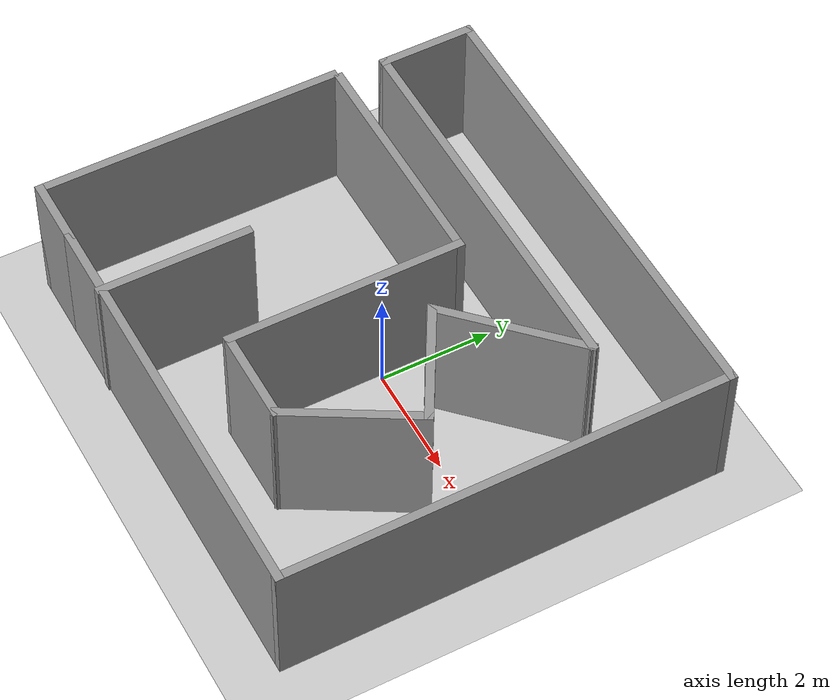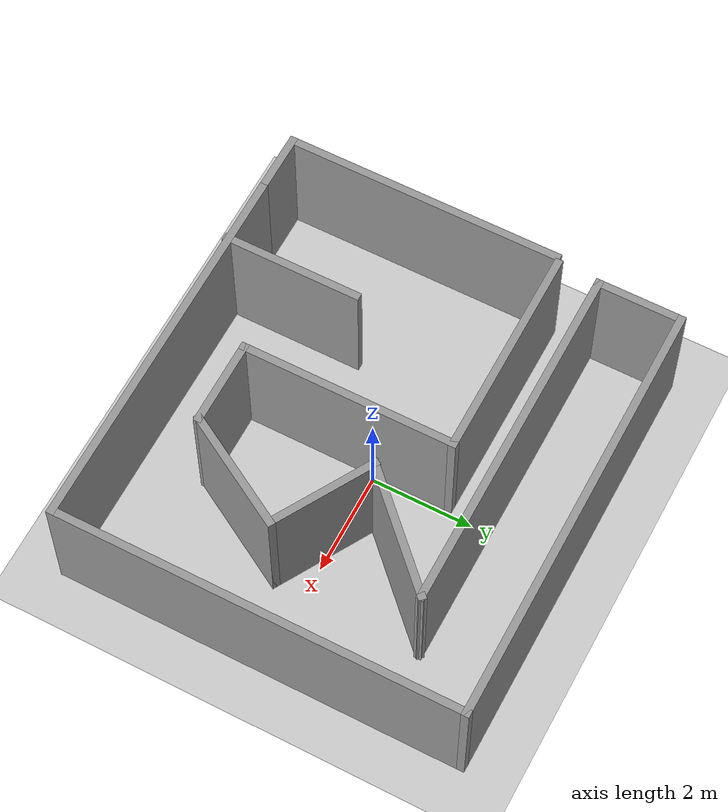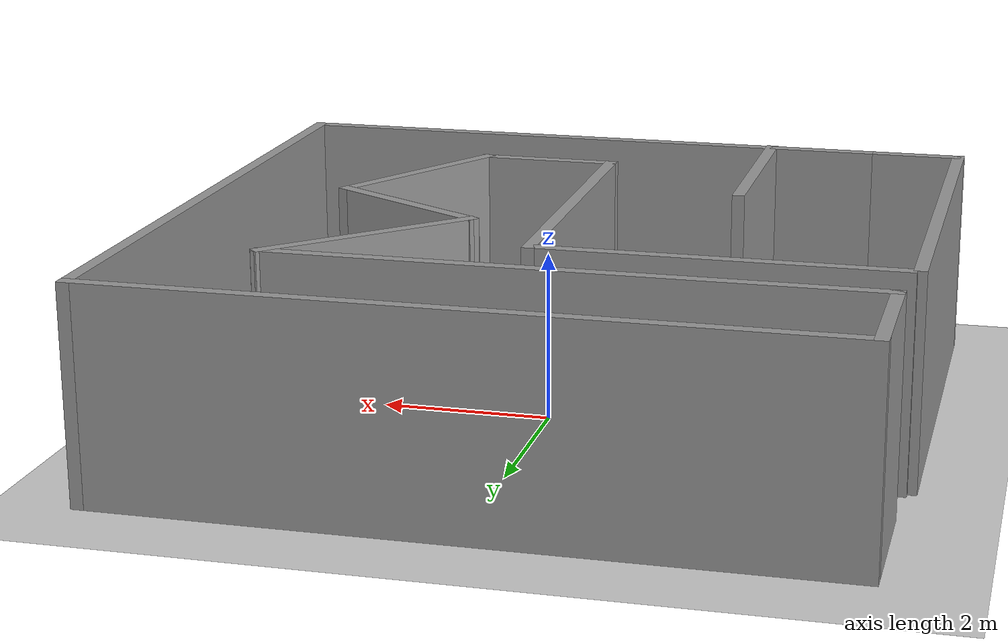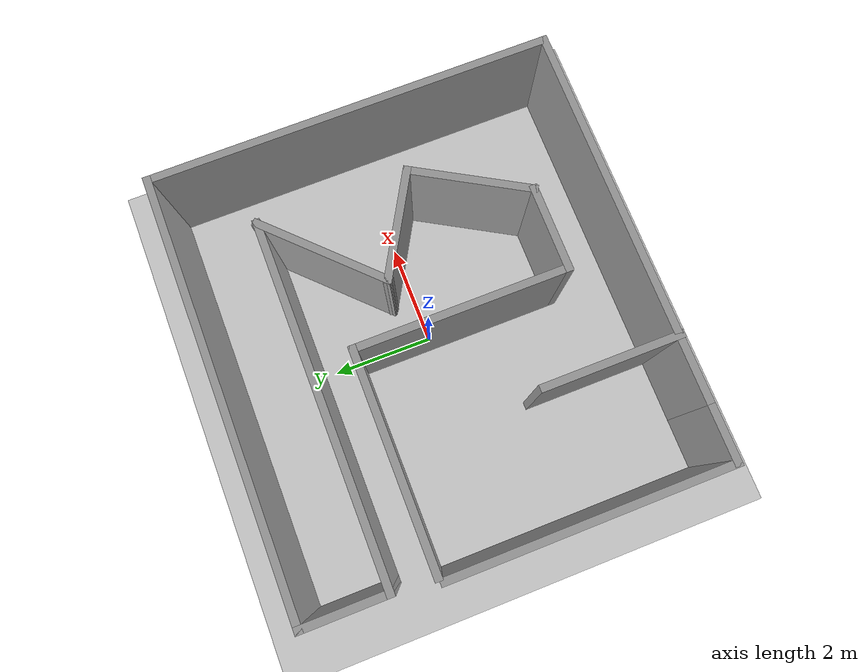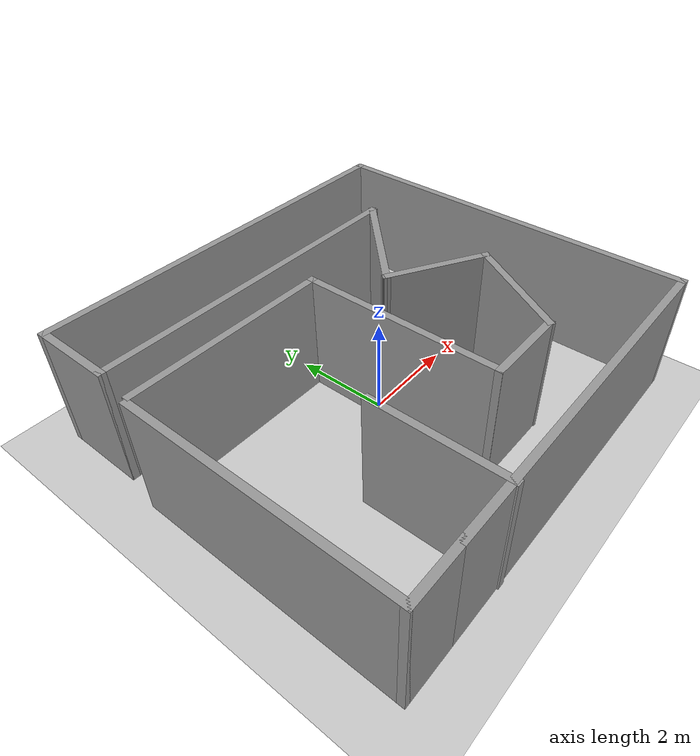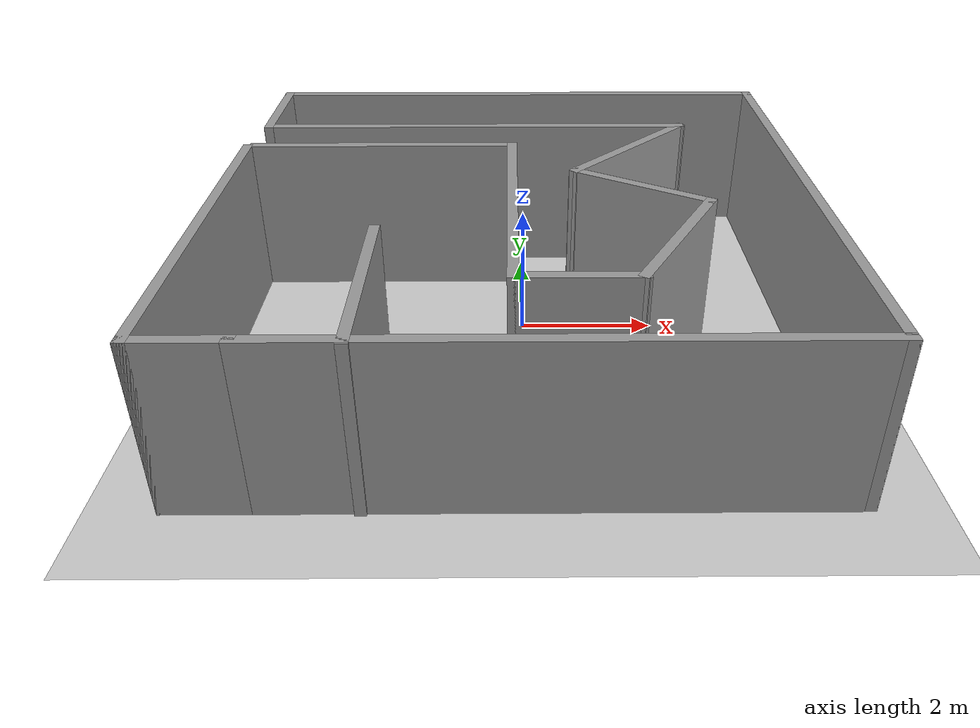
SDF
<sdf version="1.6">
 <world name="default">
  <light name="sun" type="directional">
   <pose>0 0 10 0 -0 0</pose>
   <diffuse>0.8 0.8 0.8 1</diffuse>
   <specular>0.2 0.2 0.2 1</specular>
   <attenuation>
    <range>1000</range>
    <constant>0.9</constant>
    <linear>0.01</linear>
    <quadratic>0.001</quadratic>
   </attenuation>
   <direction>-0.5 0.1 -0.9</direction>
  </light>
  <model name="ground_plane">
   <static>1</static>
   <link name="link">
    <collision name="collision">
     <geometry><plane><normal>0 0 1</normal><size>100 100</size></plane></geometry>
     <surface><friction><ode><mu>100</mu><mu2>50</mu2></ode></friction></surface>
    </collision>
    <visual name="visual">
     <cast_shadows>0</cast_shadows>
     <geometry><plane><normal>0 0 1</normal><size>100 100</size></plane></geometry>
     <material>
      <script><uri>file://media/materials/scripts/gazebo.material</uri><name>Gazebo/Grey</name></script>
     </material>
    </visual>
   </link>
  </model>
  <gravity>0 0 -9.8</gravity>
  <magnetic_field>6e-06 2.3e-05 -4.2e-05</magnetic_field>
  <atmosphere type="adiabatic"/>
  <physics name="default_physics" default="0" type="ode">
   <max_step_size>0.001</max_step_size>
   <real_time_factor>1</real_time_factor>
   <real_time_update_rate>1000</real_time_update_rate>
  </physics>
  <scene><ambient>0.4 0.4 0.4 1</ambient><background>0.7 0.7 0.7 1</background><shadows>1</shadows></scene>
  <spherical_coordinates>
   <surface_model>EARTH_WGS84</surface_model>
   <latitude_deg>0</latitude_deg>
   <longitude_deg>0</longitude_deg>
   <elevation>0</elevation>
   <heading_deg>0</heading_deg>
  </spherical_coordinates>
  <model name="robot_house">
   <pose>-0.11 -0.039599 0 0 -0 0</pose>
   <link name="Wall_0">
    <collision name="Wall_0_Collision">
     <geometry><box><size>7.5 0.15 2.5</size></box></geometry>
     <pose>0 0 1.25 0 -0 0</pose>
    </collision>
    <visual name="Wall_0_Visual">
     <pose>0 0 1.25 0 -0 0</pose>
     <geometry><box><size>7.5 0.15 2.5</size></box></geometry>
     <material>
      <script><uri>file://media/materials/scripts/gazebo.material</uri><name>Gazebo/Grey</name></script>
      <ambient>1 1 1 1</ambient>
     </material>
     <meta><layer>0</layer></meta>
    </visual>
    <pose>0.575 -3.9104 0 0 -0 0</pose>
   </link>
   <link name="Wall_12">
    <collision name="Wall_12_Collision">
     <geometry><box><size>1.3 0.15 2.5</size></box></geometry>
     <pose>0 0 1.25 0 -0 0</pose>
    </collision>
    <visual name="Wall_12_Visual">
     <pose>0 0 1.25 0 -0 0</pose>
     <geometry><box><size>1.3 0.15 2.5</size></box></geometry>
     <material>
      <script><uri>file://media/materials/scripts/gazebo.material</uri><name>Gazebo/Grey</name></script>
      <ambient>1 1 1 1</ambient>
     </material>
     <meta><layer>0</layer></meta>
    </visual>
    <pose>-3.675 -3.9104 0 0 -0 0</pose>
   </link>
   <link name="Wall_14">
    <collision name="Wall_14_Collision">
     <geometry><box><size>8 0.15 2.5</size></box></geometry>
     <pose>0 0 1.25 0 -0 0</pose>
    </collision>
    <visual name="Wall_14_Visual">
     <pose>0 0 1.25 0 -0 0</pose>
     <geometry><box><size>8 0.15 2.5</size></box></geometry>
     <material>
      <script><uri>file://media/materials/scripts/gazebo.material</uri><name>Gazebo/Grey</name></script>
      <ambient>1 1 1 1</ambient>
     </material>
     <meta><layer>0</layer></meta>
    </visual>
    <pose>4.25 0.014599 0 0 -0 1.5708</pose>
   </link>
   <link name="Wall_15">
    <collision name="Wall_15_Collision">
     <geometry><box><size>8.5 0.15 2.5</size></box></geometry>
     <pose>0 0 1.25 0 -0 0</pose>
    </collision>
    <visual name="Wall_15_Visual">
     <pose>0 0 1.25 0 -0 0</pose>
     <geometry><box><size>8.5 0.15 2.5</size></box></geometry>
     <material>
      <script><uri>file://media/materials/scripts/gazebo.material</uri><name>Gazebo/Grey</name></script>
      <ambient>1 1 1 1</ambient>
     </material>
     <meta><layer>0</layer></meta>
    </visual>
    <pose>0.075 3.9396 0 0 -0 3.14159</pose>
   </link>
   <link name="Wall_16">
    <collision name="Wall_16_Collision">
     <geometry><box><size>1.75 0.15 2.5</size></box></geometry>
     <pose>0 0 1.25 0 -0 0</pose>
    </collision>
    <visual name="Wall_16_Visual">
     <pose>0 0 1.25 0 -0 0</pose>
     <geometry><box><size>1.75 0.15 2.5</size></box></geometry>
     <material>
      <script><uri>file://media/materials/scripts/gazebo.material</uri><name>Gazebo/Grey</name></script>
      <ambient>1 1 1 1</ambient>
     </material>
     <meta><layer>0</layer></meta>
    </visual>
    <pose>-4.1 3.1396 0 0 0 -1.5708</pose>
   </link>
   <link name="Wall_17">
    <collision name="Wall_17_Collision">
     <geometry><box><size>7 0.15 2.5</size></box></geometry>
     <pose>0 0 1.25 0 -0 0</pose>
    </collision>
    <visual name="Wall_17_Visual">
     <pose>0 0 1.25 0 -0 0</pose>
     <geometry><box><size>7 0.15 2.5</size></box></geometry>
     <material>
      <script><uri>file://media/materials/scripts/gazebo.material</uri><name>Gazebo/Grey</name></script>
      <ambient>1 1 1 1</ambient>
     </material>
     <meta><layer>0</layer></meta>
    </visual>
    <pose>-0.675 2.3396 0 0 -0 0</pose>
   </link>
   <link name="Wall_18">
    <collision name="Wall_18_Collision">
     <geometry><box><size>2.75 0.15 2.5</size></box></geometry>
     <pose>0 0 1.25 0 -0 0</pose>
    </collision>
    <visual name="Wall_18_Visual">
     <pose>0 0 1.25 0 -0 0</pose>
     <geometry><box><size>2.75 0.15 2.5</size></box></geometry>
     <material>
      <script><uri>file://media/materials/scripts/gazebo.material</uri><name>Gazebo/Grey</name></script>
      <ambient>1 1 1 1</ambient>
     </material>
     <meta><layer>0</layer></meta>
    </visual>
    <pose>1.83076 1.42036 0 0 0 -2.35619</pose>
   </link>
   <link name="Wall_19">
    <collision name="Wall_19_Collision">
     <geometry><box><size>2.25 0.15 2.5</size></box></geometry>
     <pose>0 0 1.25 0 -0 0</pose>
    </collision>
    <visual name="Wall_19_Visual">
     <pose>0 0 1.25 0 -0 0</pose>
     <geometry><box><size>2.25 0.15 2.5</size></box></geometry>
     <material>
      <script><uri>file://media/materials/scripts/gazebo.material</uri><name>Gazebo/Grey</name></script>
      <ambient>1 1 1 1</ambient>
     </material>
     <meta><layer>0</layer></meta>
    </visual>
    <pose>1.82085 -0.023879 0 0 0 -0.523599</pose>
   </link>
   <link name="Wall_20">
    <collision name="Wall_20_Collision">
     <geometry><box><size>2.5 0.15 2.5</size></box></geometry>
     <pose>0 0 1.25 0 -0 0</pose>
    </collision>
    <visual name="Wall_20_Visual">
     <pose>0 0 1.25 0 -0 0</pose>
     <geometry><box><size>2.5 0.15 2.5</size></box></geometry>
     <material>
      <script><uri>file://media/materials/scripts/gazebo.material</uri><name>Gazebo/Grey</name></script>
      <ambient>1 1 1 1</ambient>
     </material>
     <meta><layer>0</layer></meta>
    </visual>
    <pose>2.14268 -1.56646 0 0 0 -2.0944</pose>
   </link>
   <link name="Wall_21">
    <collision name="Wall_21_Collision">
     <geometry><box><size>1.75 0.15 2.5</size></box></geometry>
     <pose>0 0 1.25 0 -0 0</pose>
    </collision>
    <visual name="Wall_21_Visual">
     <pose>0 0 1.25 0 -0 0</pose>
     <geometry><box><size>1.75 0.15 2.5</size></box></geometry>
     <material>
      <script><uri>file://media/materials/scripts/gazebo.material</uri><name>Gazebo/Grey</name></script>
      <ambient>1 1 1 1</ambient>
     </material>
     <meta><layer>0</layer></meta>
    </visual>
    <pose>0.755176 -2.58404 0 0 -0 3.14159</pose>
   </link>
   <link name="Wall_22">
    <collision name="Wall_22_Collision">
     <geometry><box><size>4.25 0.15 2.5</size></box></geometry>
     <pose>0 0 1.25 0 -0 0</pose>
    </collision>
    <visual name="Wall_22_Visual">
     <pose>0 0 1.25 0 -0 0</pose>
     <geometry><box><size>4.25 0.15 2.5</size></box></geometry>
     <material>
      <script><uri>file://media/materials/scripts/gazebo.material</uri><name>Gazebo/Grey</name></script>
      <ambient>1 1 1 1</ambient>
     </material>
     <meta><layer>0</layer></meta>
    </visual>
    <pose>-0.044824 -0.534038 0 0 -0 1.5708</pose>
   </link>
   <link name="Wall_23">
    <collision name="Wall_23_Collision">
     <geometry><box><size>4.25 0.15 2.5</size></box></geometry>
     <pose>0 0 1.25 0 -0 0</pose>
    </collision>
    <visual name="Wall_23_Visual">
     <pose>0 0 1.25 0 -0 0</pose>
     <geometry><box><size>4.25 0.15 2.5</size></box></geometry>
     <material>
      <script><uri>file://media/materials/scripts/gazebo.material</uri><name>Gazebo/Grey</name></script>
      <ambient>1 1 1 1</ambient>
     </material>
     <meta><layer>0</layer></meta>
    </visual>
    <pose>-2.09482 1.51596 0 0 -0 3.14159</pose>
   </link>
   <link name="Wall_26">
    <collision name="Wall_26_Collision">
     <geometry><box><size>5.5 0.15 2.5</size></box></geometry>
     <pose>0 0 1.25 0 -0 0</pose>
    </collision>
    <visual name="Wall_26_Visual">
     <pose>0 0 1.25 0 -0 0</pose>
     <geometry><box><size>5.5 0.15 2.5</size></box></geometry>
     <material>
      <script><uri>file://media/materials/scripts/gazebo.material</uri><name>Gazebo/Grey</name></script>
      <ambient>1 1 1 1</ambient>
     </material>
     <meta><layer>0</layer></meta>
    </visual>
    <pose>-4.25 -1.2354 0 0 -0 1.5708</pose>
   </link>
   <link name="Wall_29">
    <collision name="Wall_29_Collision">
     <geometry><box><size>2.75 0.15 2.5</size></box></geometry>
     <pose>0 0 1.25 0 -0 0</pose>
    </collision>
    <visual name="Wall_29_Visual">
     <pose>0 0 1.25 0 -0 0</pose>
     <geometry><box><size>2.75 0.15 2.5</size></box></geometry>
     <material>
      <script><uri>file://media/materials/scripts/gazebo.material</uri><name>Gazebo/Grey</name></script>
      <ambient>1 1 1 1</ambient>
     </material>
     <meta><layer>0</layer></meta>
    </visual>
    <pose>-1.87461 -2.6396 0 0 -0 1.5708</pose>
   </link>
   <static>1</static>
  </model>
 </world>
</sdf>
